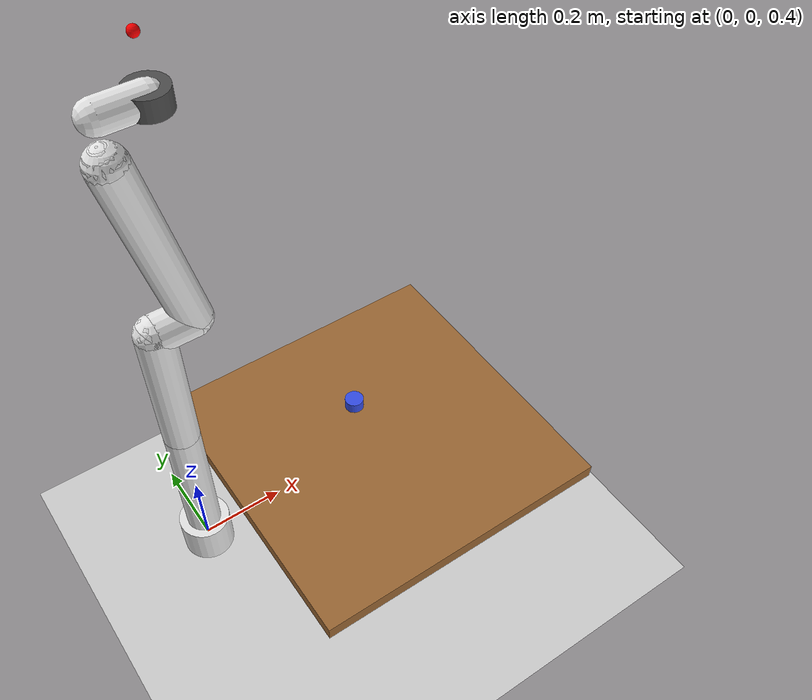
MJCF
<!--
  Minimal Franka Emika Panda scene for PSL-Bench Phase 0.
  7-DOF arm with realistic joint limits, a simple table, and one graspable object.
  Frame convention: z-up, SI units (metres, radians, kg).
-->
<mujoco model="panda_minimal">
  <option timestep="0.002" gravity="0 0 -9.81"/>
  <compiler angle="radian"/>

  <default>
    <joint damping="1.0" armature="0.1"/>
    <geom condim="4" friction="1 0.5 0.01"/>
  </default>

  <worldbody>
    <!-- Ground plane -->
    <geom name="floor" type="plane" size="2 2 0.1" rgba="0.8 0.8 0.8 1"/>

    <!-- Table -->
    <body name="table" pos="0.5 0 0.4">
      <geom name="table_top" type="box" size="0.4 0.4 0.02" rgba="0.6 0.4 0.2 1" mass="10"/>
    </body>

    <!-- Panda arm base -->
    <body name="panda_link0" pos="0 0 0.42">
      <geom name="link0_geom" type="cylinder" size="0.06 0.05" rgba="0.9 0.9 0.9 1" mass="2.0"/>
      <body name="panda_link1" pos="0 0 0.05">
        <joint name="joint_0" type="hinge" axis="0 0 1" range="-2.8973 2.8973" damping="10"/>
        <geom name="link1_geom" type="capsule" fromto="0 0 0 0 0 0.333" size="0.04" rgba="0.9 0.9 0.9 1" mass="2.0"/>
        <body name="panda_link2" pos="0 0 0.333">
          <joint name="joint_1" type="hinge" axis="0 1 0" range="-1.7628 1.7628" damping="10"/>
          <geom name="link2_geom" type="capsule" fromto="0 0 0 0 0 0.316" size="0.04" rgba="0.9 0.9 0.9 1" mass="2.0"/>
          <body name="panda_link3" pos="0 0 0.316">
            <joint name="joint_2" type="hinge" axis="0 0 1" range="-2.8973 2.8973" damping="10"/>
            <geom name="link3_geom" type="capsule" fromto="0 0 0 0.0825 0 0" size="0.04" rgba="0.9 0.9 0.9 1" mass="2.0"/>
            <body name="panda_link4" pos="0.0825 0 0">
              <joint name="joint_3" type="hinge" axis="0 -1 0" range="-3.0718 -0.0698" damping="10"/>
              <geom name="link4_geom" type="capsule" fromto="0 0 0 -0.0825 0 0.384" size="0.04" rgba="0.9 0.9 0.9 1" mass="2.0"/>
              <body name="panda_link5" pos="-0.0825 0 0.384">
                <joint name="joint_4" type="hinge" axis="0 0 1" range="-2.8973 2.8973" damping="10"/>
                <geom name="link5_geom" type="sphere" size="0.04" rgba="0.9 0.9 0.9 1" mass="1.0"/>
                <body name="panda_link6" pos="0 0 0.088">
                  <joint name="joint_5" type="hinge" axis="0 1 0" range="-0.0175 3.7525" damping="5"/>
                  <geom name="link6_geom" type="capsule" fromto="0 0 0 0.088 0 0" size="0.03" rgba="0.9 0.9 0.9 1" mass="1.0"/>
                  <body name="panda_link7" pos="0.088 0 0">
                    <joint name="joint_6" type="hinge" axis="0 0 1" range="-2.8973 2.8973" damping="2"/>
                    <geom name="link7_geom" type="cylinder" size="0.04 0.02" rgba="0.3 0.3 0.3 1" mass="0.5"/>
                    <!-- End-effector site -->
                    <site name="ee_site" pos="0 0 0.107" size="0.01" rgba="1 0 0 1"/>
                  </body>
                </body>
              </body>
            </body>
          </body>
        </body>
      </body>
    </body>

    <!-- Graspable object -->
    <body name="blue_gear" pos="0.5 0.1 0.45">
      <freejoint name="gear_free"/>
      <geom name="gear_geom" type="cylinder" size="0.025 0.015" rgba="0.2 0.3 0.9 1" mass="0.1"/>
    </body>
  </worldbody>

  <actuator>
    <position name="act_joint_0" joint="joint_0" kp="1000"/>
    <position name="act_joint_1" joint="joint_1" kp="1000"/>
    <position name="act_joint_2" joint="joint_2" kp="1000"/>
    <position name="act_joint_3" joint="joint_3" kp="1000"/>
    <position name="act_joint_4" joint="joint_4" kp="1000"/>
    <position name="act_joint_5" joint="joint_5" kp="1000"/>
    <position name="act_joint_6" joint="joint_6" kp="1000"/>
  </actuator>

  <sensor>
    <jointpos name="jpos_0" joint="joint_0"/>
    <jointpos name="jpos_1" joint="joint_1"/>
    <jointpos name="jpos_2" joint="joint_2"/>
    <jointpos name="jpos_3" joint="joint_3"/>
    <jointpos name="jpos_4" joint="joint_4"/>
    <jointpos name="jpos_5" joint="joint_5"/>
    <jointpos name="jpos_6" joint="joint_6"/>
    <jointvel name="jvel_0" joint="joint_0"/>
    <jointvel name="jvel_1" joint="joint_1"/>
    <jointvel name="jvel_2" joint="joint_2"/>
    <jointvel name="jvel_3" joint="joint_3"/>
    <jointvel name="jvel_4" joint="joint_4"/>
    <jointvel name="jvel_5" joint="joint_5"/>
    <jointvel name="jvel_6" joint="joint_6"/>
    <framepos name="ee_pos" objtype="site" objname="ee_site"/>
    <framequat name="ee_quat" objtype="site" objname="ee_site"/>
  </sensor>
</mujoco>
